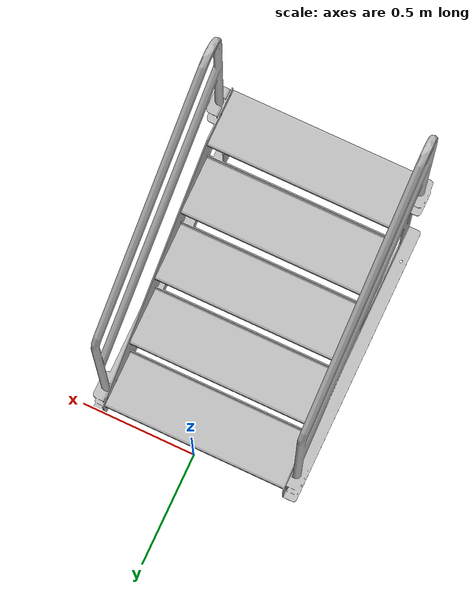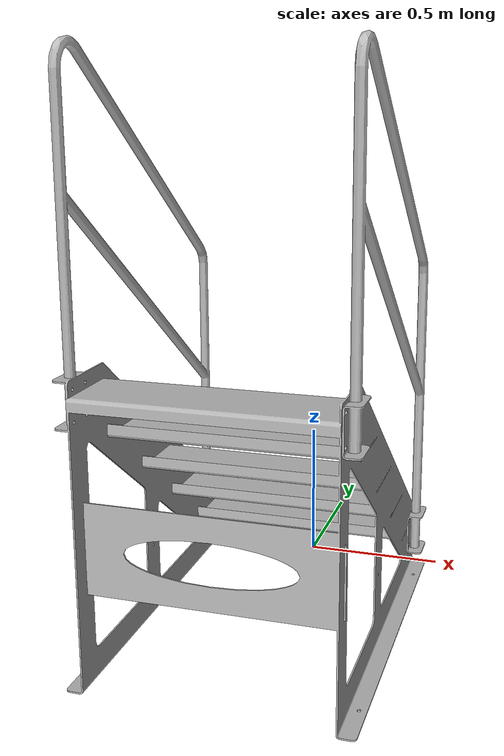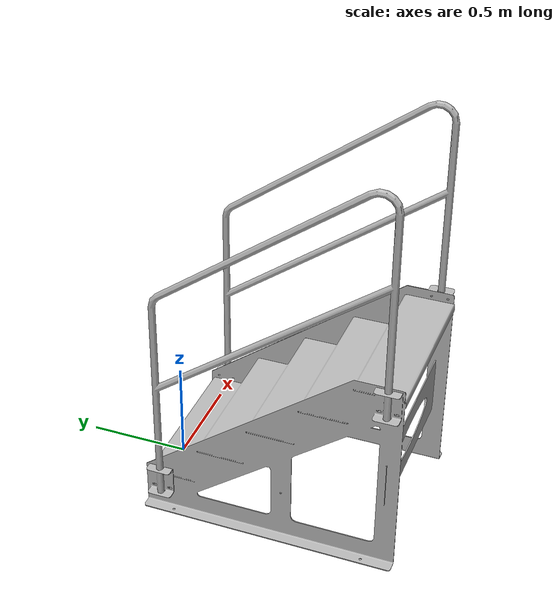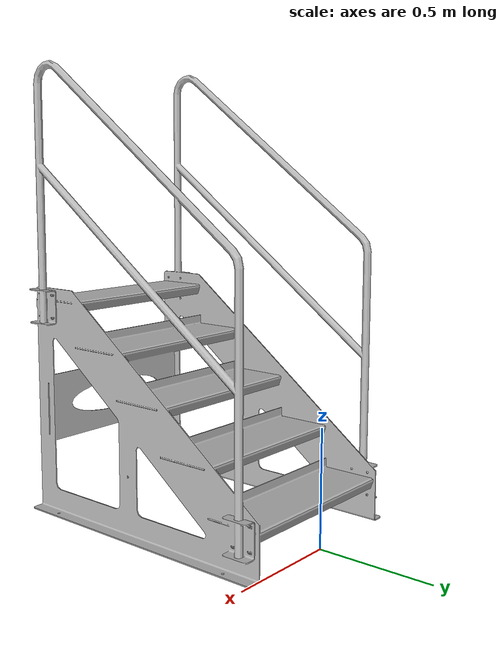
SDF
<?xml version="1.0" ?>
<sdf version="1.6">
  <model name="stairs">
    <static>true</static>
    <pose frame=''>0. 0. 0. 0. 0. 0.</pose>
    <link name="link">
      <collision name="collision">
        <geometry>
          <mesh>
            <uri>model://stairs/meshes/stairs.stl</uri>
            <scale>0.001 0.001 0.001</scale>
          </mesh>
        </geometry>
      </collision>
      <visual name="visual">
        <geometry>
          <mesh>
            <uri>model://stairs/meshes/stairs.stl</uri>
            <scale>0.001 0.001 0.001</scale>
          </mesh>
        </geometry>
      <material>
          <script>
            <name>Gazebo/Steps</name>
            <uri>file://media/materials/scripts/gazebo.material</uri>
          </script>
        </material>
      </visual>
    </link>
  </model>
</sdf>
